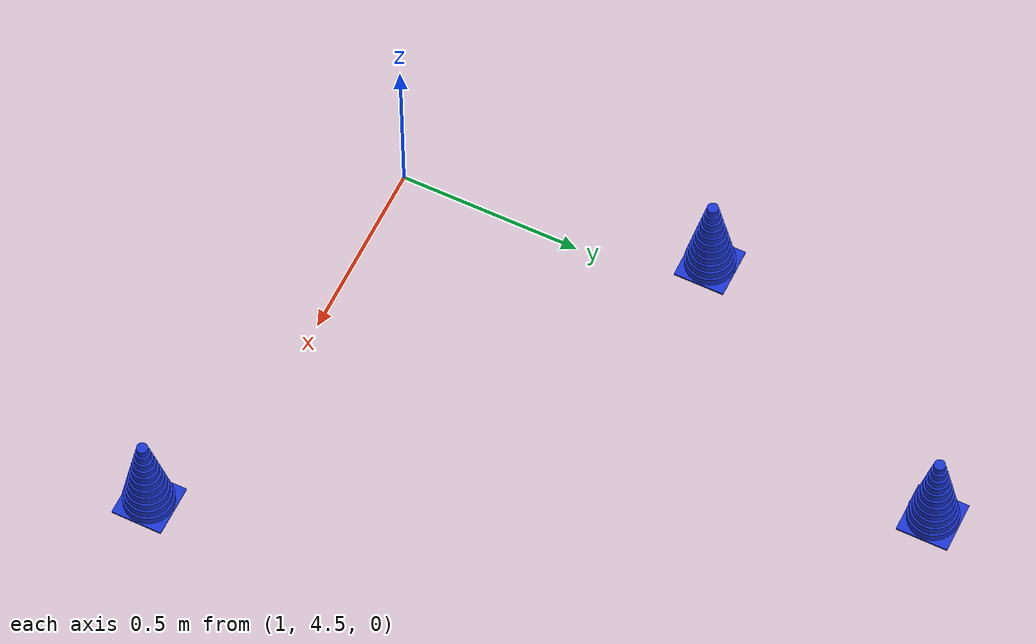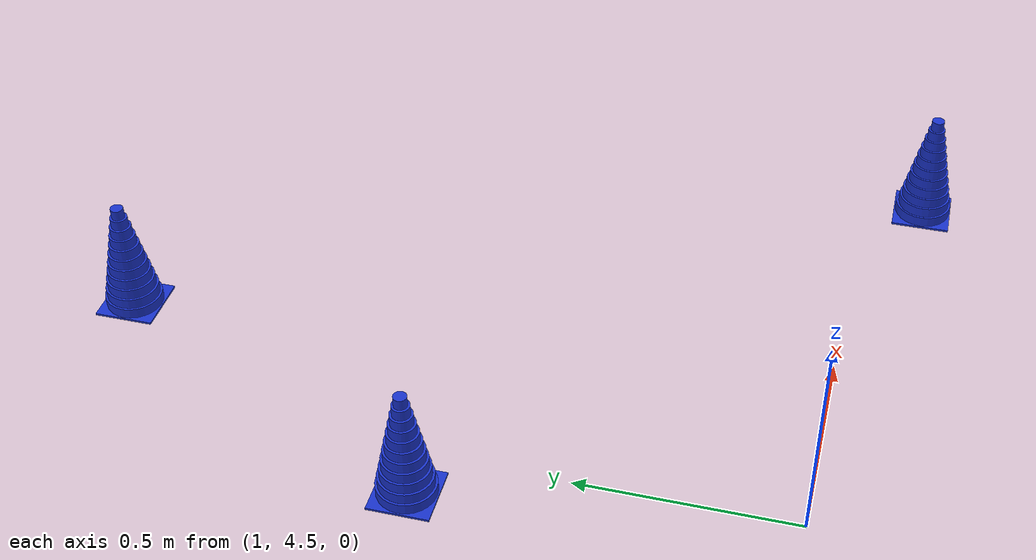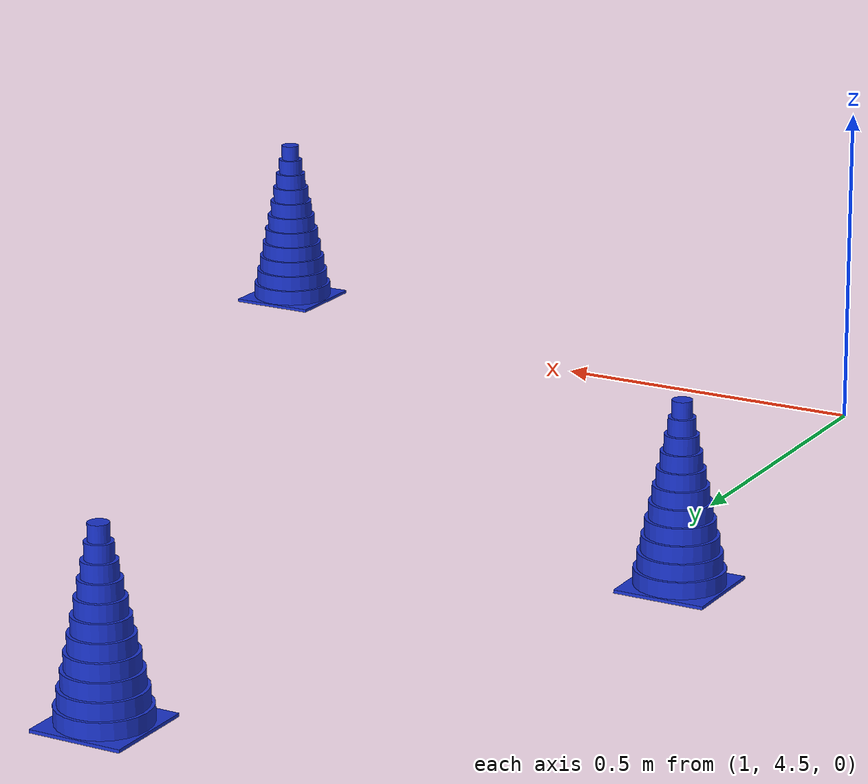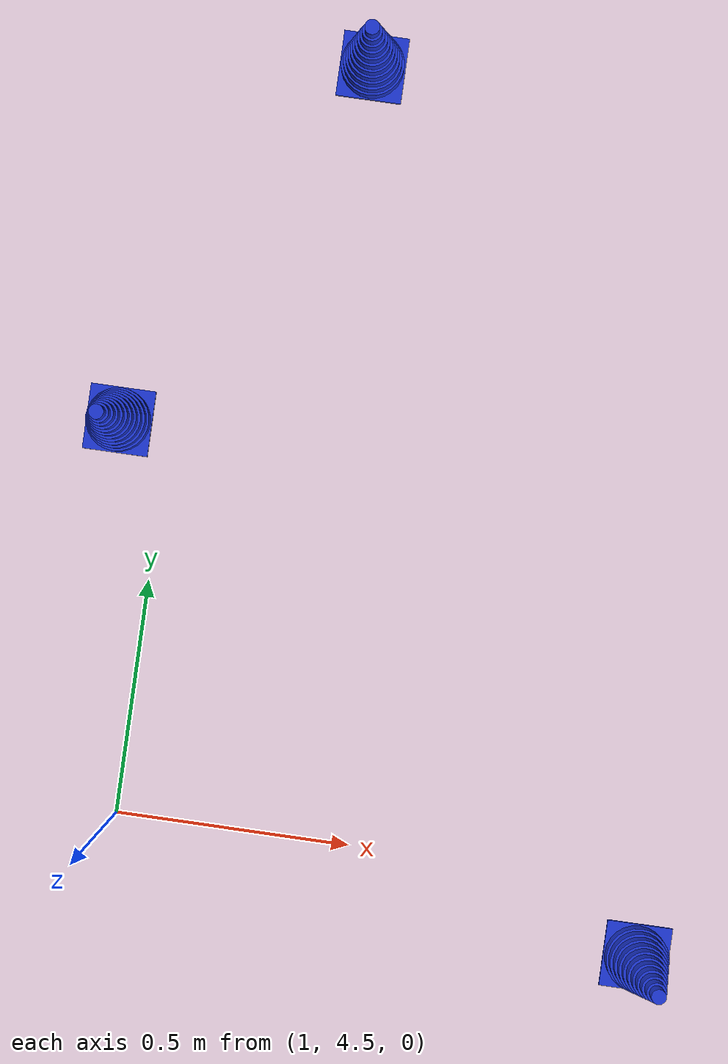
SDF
<sdf version="1.5">
 <world name="tars_qualy_real">
  <include><uri>model://sun</uri></include>
  <model name="senuelo_cono_4">
   <static>1</static>
   <pose>2.140 4.350 0 0 0 0</pose>
   <link name="senuelo_cono_4">
    <collision name="c0">
     <pose>0 0 0.0025 0 0 0</pose>
     <geometry><box><size>0.14 0.14 0.005</size></box></geometry>
    </collision>
    <visual name="v0">
     <pose>0 0 0.0025 0 0 0</pose>
     <geometry><box><size>0.14 0.14 0.005</size></box></geometry>
     <material>
      <ambient>0.10 0.20 0.80 1</ambient>
      <diffuse>0.10 0.20 0.80 1</diffuse>
      <specular>0.1 0.1 0.1 1</specular>
     </material>
    </visual>
    <collision name="c1">
     <pose>0 0 0.0175 0 0 0</pose>
     <geometry><cylinder><radius>0.0674</radius><length>0.0250</length></cylinder></geometry>
    </collision>
    <visual name="v1">
     <pose>0 0 0.0175 0 0 0</pose>
     <geometry><cylinder><radius>0.0674</radius><length>0.0250</length></cylinder></geometry>
     <material>
      <ambient>0.10 0.20 0.80 1</ambient>
      <diffuse>0.10 0.20 0.80 1</diffuse>
      <specular>0.1 0.1 0.1 1</specular>
     </material>
    </visual>
    <collision name="c2">
     <pose>0 0 0.0425 0 0 0</pose>
     <geometry><cylinder><radius>0.0622</radius><length>0.0250</length></cylinder></geometry>
    </collision>
    <visual name="v2">
     <pose>0 0 0.0425 0 0 0</pose>
     <geometry><cylinder><radius>0.0622</radius><length>0.0250</length></cylinder></geometry>
     <material>
      <ambient>0.10 0.20 0.80 1</ambient>
      <diffuse>0.10 0.20 0.80 1</diffuse>
      <specular>0.1 0.1 0.1 1</specular>
     </material>
    </visual>
    <collision name="c3">
     <pose>0 0 0.0675 0 0 0</pose>
     <geometry><cylinder><radius>0.0569</radius><length>0.0250</length></cylinder></geometry>
    </collision>
    <visual name="v3">
     <pose>0 0 0.0675 0 0 0</pose>
     <geometry><cylinder><radius>0.0569</radius><length>0.0250</length></cylinder></geometry>
     <material>
      <ambient>0.10 0.20 0.80 1</ambient>
      <diffuse>0.10 0.20 0.80 1</diffuse>
      <specular>0.1 0.1 0.1 1</specular>
     </material>
    </visual>
    <collision name="c4">
     <pose>0 0 0.0925 0 0 0</pose>
     <geometry><cylinder><radius>0.0517</radius><length>0.0250</length></cylinder></geometry>
    </collision>
    <visual name="v4">
     <pose>0 0 0.0925 0 0 0</pose>
     <geometry><cylinder><radius>0.0517</radius><length>0.0250</length></cylinder></geometry>
     <material>
      <ambient>0.10 0.20 0.80 1</ambient>
      <diffuse>0.10 0.20 0.80 1</diffuse>
      <specular>0.1 0.1 0.1 1</specular>
     </material>
    </visual>
    <collision name="c5">
     <pose>0 0 0.1175 0 0 0</pose>
     <geometry><cylinder><radius>0.0465</radius><length>0.0250</length></cylinder></geometry>
    </collision>
    <visual name="v5">
     <pose>0 0 0.1175 0 0 0</pose>
     <geometry><cylinder><radius>0.0465</radius><length>0.0250</length></cylinder></geometry>
     <material>
      <ambient>0.10 0.20 0.80 1</ambient>
      <diffuse>0.10 0.20 0.80 1</diffuse>
      <specular>0.1 0.1 0.1 1</specular>
     </material>
    </visual>
    <collision name="c6">
     <pose>0 0 0.1425 0 0 0</pose>
     <geometry><cylinder><radius>0.0413</radius><length>0.0250</length></cylinder></geometry>
    </collision>
    <visual name="v6">
     <pose>0 0 0.1425 0 0 0</pose>
     <geometry><cylinder><radius>0.0413</radius><length>0.0250</length></cylinder></geometry>
     <material>
      <ambient>0.10 0.20 0.80 1</ambient>
      <diffuse>0.10 0.20 0.80 1</diffuse>
      <specular>0.1 0.1 0.1 1</specular>
     </material>
    </visual>
    <collision name="c7">
     <pose>0 0 0.1675 0 0 0</pose>
     <geometry><cylinder><radius>0.0360</radius><length>0.0250</length></cylinder></geometry>
    </collision>
    <visual name="v7">
     <pose>0 0 0.1675 0 0 0</pose>
     <geometry><cylinder><radius>0.0360</radius><length>0.0250</length></cylinder></geometry>
     <material>
      <ambient>0.10 0.20 0.80 1</ambient>
      <diffuse>0.10 0.20 0.80 1</diffuse>
      <specular>0.1 0.1 0.1 1</specular>
     </material>
    </visual>
    <collision name="c8">
     <pose>0 0 0.1925 0 0 0</pose>
     <geometry><cylinder><radius>0.0308</radius><length>0.0250</length></cylinder></geometry>
    </collision>
    <visual name="v8">
     <pose>0 0 0.1925 0 0 0</pose>
     <geometry><cylinder><radius>0.0308</radius><length>0.0250</length></cylinder></geometry>
     <material>
      <ambient>0.10 0.20 0.80 1</ambient>
      <diffuse>0.10 0.20 0.80 1</diffuse>
      <specular>0.1 0.1 0.1 1</specular>
     </material>
    </visual>
    <collision name="c9">
     <pose>0 0 0.2175 0 0 0</pose>
     <geometry><cylinder><radius>0.0256</radius><length>0.0250</length></cylinder></geometry>
    </collision>
    <visual name="v9">
     <pose>0 0 0.2175 0 0 0</pose>
     <geometry><cylinder><radius>0.0256</radius><length>0.0250</length></cylinder></geometry>
     <material>
      <ambient>0.10 0.20 0.80 1</ambient>
      <diffuse>0.10 0.20 0.80 1</diffuse>
      <specular>0.1 0.1 0.1 1</specular>
     </material>
    </visual>
    <collision name="c10">
     <pose>0 0 0.2425 0 0 0</pose>
     <geometry><cylinder><radius>0.0203</radius><length>0.0250</length></cylinder></geometry>
    </collision>
    <visual name="v10">
     <pose>0 0 0.2425 0 0 0</pose>
     <geometry><cylinder><radius>0.0203</radius><length>0.0250</length></cylinder></geometry>
     <material>
      <ambient>0.10 0.20 0.80 1</ambient>
      <diffuse>0.10 0.20 0.80 1</diffuse>
      <specular>0.1 0.1 0.1 1</specular>
     </material>
    </visual>
    <collision name="c11">
     <pose>0 0 0.2675 0 0 0</pose>
     <geometry><cylinder><radius>0.0151</radius><length>0.0250</length></cylinder></geometry>
    </collision>
    <visual name="v11">
     <pose>0 0 0.2675 0 0 0</pose>
     <geometry><cylinder><radius>0.0151</radius><length>0.0250</length></cylinder></geometry>
     <material>
      <ambient>0.10 0.20 0.80 1</ambient>
      <diffuse>0.10 0.20 0.80 1</diffuse>
      <specular>0.1 0.1 0.1 1</specular>
     </material>
    </visual>
   </link>
  </model>
  <model name="senuelo_cono_5">
   <static>1</static>
   <pose>0.890 5.330 0 0 0 0</pose>
   <link name="senuelo_cono_5">
    <collision name="c0">
     <pose>0 0 0.0025 0 0 0</pose>
     <geometry><box><size>0.14 0.14 0.005</size></box></geometry>
    </collision>
    <visual name="v0">
     <pose>0 0 0.0025 0 0 0</pose>
     <geometry><box><size>0.14 0.14 0.005</size></box></geometry>
     <material>
      <ambient>0.10 0.20 0.80 1</ambient>
      <diffuse>0.10 0.20 0.80 1</diffuse>
      <specular>0.1 0.1 0.1 1</specular>
     </material>
    </visual>
    <collision name="c1">
     <pose>0 0 0.0175 0 0 0</pose>
     <geometry><cylinder><radius>0.0674</radius><length>0.0250</length></cylinder></geometry>
    </collision>
    <visual name="v1">
     <pose>0 0 0.0175 0 0 0</pose>
     <geometry><cylinder><radius>0.0674</radius><length>0.0250</length></cylinder></geometry>
     <material>
      <ambient>0.10 0.20 0.80 1</ambient>
      <diffuse>0.10 0.20 0.80 1</diffuse>
      <specular>0.1 0.1 0.1 1</specular>
     </material>
    </visual>
    <collision name="c2">
     <pose>0 0 0.0425 0 0 0</pose>
     <geometry><cylinder><radius>0.0622</radius><length>0.0250</length></cylinder></geometry>
    </collision>
    <visual name="v2">
     <pose>0 0 0.0425 0 0 0</pose>
     <geometry><cylinder><radius>0.0622</radius><length>0.0250</length></cylinder></geometry>
     <material>
      <ambient>0.10 0.20 0.80 1</ambient>
      <diffuse>0.10 0.20 0.80 1</diffuse>
      <specular>0.1 0.1 0.1 1</specular>
     </material>
    </visual>
    <collision name="c3">
     <pose>0 0 0.0675 0 0 0</pose>
     <geometry><cylinder><radius>0.0569</radius><length>0.0250</length></cylinder></geometry>
    </collision>
    <visual name="v3">
     <pose>0 0 0.0675 0 0 0</pose>
     <geometry><cylinder><radius>0.0569</radius><length>0.0250</length></cylinder></geometry>
     <material>
      <ambient>0.10 0.20 0.80 1</ambient>
      <diffuse>0.10 0.20 0.80 1</diffuse>
      <specular>0.1 0.1 0.1 1</specular>
     </material>
    </visual>
    <collision name="c4">
     <pose>0 0 0.0925 0 0 0</pose>
     <geometry><cylinder><radius>0.0517</radius><length>0.0250</length></cylinder></geometry>
    </collision>
    <visual name="v4">
     <pose>0 0 0.0925 0 0 0</pose>
     <geometry><cylinder><radius>0.0517</radius><length>0.0250</length></cylinder></geometry>
     <material>
      <ambient>0.10 0.20 0.80 1</ambient>
      <diffuse>0.10 0.20 0.80 1</diffuse>
      <specular>0.1 0.1 0.1 1</specular>
     </material>
    </visual>
    <collision name="c5">
     <pose>0 0 0.1175 0 0 0</pose>
     <geometry><cylinder><radius>0.0465</radius><length>0.0250</length></cylinder></geometry>
    </collision>
    <visual name="v5">
     <pose>0 0 0.1175 0 0 0</pose>
     <geometry><cylinder><radius>0.0465</radius><length>0.0250</length></cylinder></geometry>
     <material>
      <ambient>0.10 0.20 0.80 1</ambient>
      <diffuse>0.10 0.20 0.80 1</diffuse>
      <specular>0.1 0.1 0.1 1</specular>
     </material>
    </visual>
    <collision name="c6">
     <pose>0 0 0.1425 0 0 0</pose>
     <geometry><cylinder><radius>0.0413</radius><length>0.0250</length></cylinder></geometry>
    </collision>
    <visual name="v6">
     <pose>0 0 0.1425 0 0 0</pose>
     <geometry><cylinder><radius>0.0413</radius><length>0.0250</length></cylinder></geometry>
     <material>
      <ambient>0.10 0.20 0.80 1</ambient>
      <diffuse>0.10 0.20 0.80 1</diffuse>
      <specular>0.1 0.1 0.1 1</specular>
     </material>
    </visual>
    <collision name="c7">
     <pose>0 0 0.1675 0 0 0</pose>
     <geometry><cylinder><radius>0.0360</radius><length>0.0250</length></cylinder></geometry>
    </collision>
    <visual name="v7">
     <pose>0 0 0.1675 0 0 0</pose>
     <geometry><cylinder><radius>0.0360</radius><length>0.0250</length></cylinder></geometry>
     <material>
      <ambient>0.10 0.20 0.80 1</ambient>
      <diffuse>0.10 0.20 0.80 1</diffuse>
      <specular>0.1 0.1 0.1 1</specular>
     </material>
    </visual>
    <collision name="c8">
     <pose>0 0 0.1925 0 0 0</pose>
     <geometry><cylinder><radius>0.0308</radius><length>0.0250</length></cylinder></geometry>
    </collision>
    <visual name="v8">
     <pose>0 0 0.1925 0 0 0</pose>
     <geometry><cylinder><radius>0.0308</radius><length>0.0250</length></cylinder></geometry>
     <material>
      <ambient>0.10 0.20 0.80 1</ambient>
      <diffuse>0.10 0.20 0.80 1</diffuse>
      <specular>0.1 0.1 0.1 1</specular>
     </material>
    </visual>
    <collision name="c9">
     <pose>0 0 0.2175 0 0 0</pose>
     <geometry><cylinder><radius>0.0256</radius><length>0.0250</length></cylinder></geometry>
    </collision>
    <visual name="v9">
     <pose>0 0 0.2175 0 0 0</pose>
     <geometry><cylinder><radius>0.0256</radius><length>0.0250</length></cylinder></geometry>
     <material>
      <ambient>0.10 0.20 0.80 1</ambient>
      <diffuse>0.10 0.20 0.80 1</diffuse>
      <specular>0.1 0.1 0.1 1</specular>
     </material>
    </visual>
    <collision name="c10">
     <pose>0 0 0.2425 0 0 0</pose>
     <geometry><cylinder><radius>0.0203</radius><length>0.0250</length></cylinder></geometry>
    </collision>
    <visual name="v10">
     <pose>0 0 0.2425 0 0 0</pose>
     <geometry><cylinder><radius>0.0203</radius><length>0.0250</length></cylinder></geometry>
     <material>
      <ambient>0.10 0.20 0.80 1</ambient>
      <diffuse>0.10 0.20 0.80 1</diffuse>
      <specular>0.1 0.1 0.1 1</specular>
     </material>
    </visual>
    <collision name="c11">
     <pose>0 0 0.2675 0 0 0</pose>
     <geometry><cylinder><radius>0.0151</radius><length>0.0250</length></cylinder></geometry>
    </collision>
    <visual name="v11">
     <pose>0 0 0.2675 0 0 0</pose>
     <geometry><cylinder><radius>0.0151</radius><length>0.0250</length></cylinder></geometry>
     <material>
      <ambient>0.10 0.20 0.80 1</ambient>
      <diffuse>0.10 0.20 0.80 1</diffuse>
      <specular>0.1 0.1 0.1 1</specular>
     </material>
    </visual>
   </link>
  </model>
  <model name="senuelo_cono_6">
   <static>1</static>
   <pose>1.320 6.150 0 0 0 0</pose>
   <link name="senuelo_cono_6">
    <collision name="c0">
     <pose>0 0 0.0025 0 0 0</pose>
     <geometry><box><size>0.14 0.14 0.005</size></box></geometry>
    </collision>
    <visual name="v0">
     <pose>0 0 0.0025 0 0 0</pose>
     <geometry><box><size>0.14 0.14 0.005</size></box></geometry>
     <material>
      <ambient>0.10 0.20 0.80 1</ambient>
      <diffuse>0.10 0.20 0.80 1</diffuse>
      <specular>0.1 0.1 0.1 1</specular>
     </material>
    </visual>
    <collision name="c1">
     <pose>0 0 0.0175 0 0 0</pose>
     <geometry><cylinder><radius>0.0674</radius><length>0.0250</length></cylinder></geometry>
    </collision>
    <visual name="v1">
     <pose>0 0 0.0175 0 0 0</pose>
     <geometry><cylinder><radius>0.0674</radius><length>0.0250</length></cylinder></geometry>
     <material>
      <ambient>0.10 0.20 0.80 1</ambient>
      <diffuse>0.10 0.20 0.80 1</diffuse>
      <specular>0.1 0.1 0.1 1</specular>
     </material>
    </visual>
    <collision name="c2">
     <pose>0 0 0.0425 0 0 0</pose>
     <geometry><cylinder><radius>0.0622</radius><length>0.0250</length></cylinder></geometry>
    </collision>
    <visual name="v2">
     <pose>0 0 0.0425 0 0 0</pose>
     <geometry><cylinder><radius>0.0622</radius><length>0.0250</length></cylinder></geometry>
     <material>
      <ambient>0.10 0.20 0.80 1</ambient>
      <diffuse>0.10 0.20 0.80 1</diffuse>
      <specular>0.1 0.1 0.1 1</specular>
     </material>
    </visual>
    <collision name="c3">
     <pose>0 0 0.0675 0 0 0</pose>
     <geometry><cylinder><radius>0.0569</radius><length>0.0250</length></cylinder></geometry>
    </collision>
    <visual name="v3">
     <pose>0 0 0.0675 0 0 0</pose>
     <geometry><cylinder><radius>0.0569</radius><length>0.0250</length></cylinder></geometry>
     <material>
      <ambient>0.10 0.20 0.80 1</ambient>
      <diffuse>0.10 0.20 0.80 1</diffuse>
      <specular>0.1 0.1 0.1 1</specular>
     </material>
    </visual>
    <collision name="c4">
     <pose>0 0 0.0925 0 0 0</pose>
     <geometry><cylinder><radius>0.0517</radius><length>0.0250</length></cylinder></geometry>
    </collision>
    <visual name="v4">
     <pose>0 0 0.0925 0 0 0</pose>
     <geometry><cylinder><radius>0.0517</radius><length>0.0250</length></cylinder></geometry>
     <material>
      <ambient>0.10 0.20 0.80 1</ambient>
      <diffuse>0.10 0.20 0.80 1</diffuse>
      <specular>0.1 0.1 0.1 1</specular>
     </material>
    </visual>
    <collision name="c5">
     <pose>0 0 0.1175 0 0 0</pose>
     <geometry><cylinder><radius>0.0465</radius><length>0.0250</length></cylinder></geometry>
    </collision>
    <visual name="v5">
     <pose>0 0 0.1175 0 0 0</pose>
     <geometry><cylinder><radius>0.0465</radius><length>0.0250</length></cylinder></geometry>
     <material>
      <ambient>0.10 0.20 0.80 1</ambient>
      <diffuse>0.10 0.20 0.80 1</diffuse>
      <specular>0.1 0.1 0.1 1</specular>
     </material>
    </visual>
    <collision name="c6">
     <pose>0 0 0.1425 0 0 0</pose>
     <geometry><cylinder><radius>0.0413</radius><length>0.0250</length></cylinder></geometry>
    </collision>
    <visual name="v6">
     <pose>0 0 0.1425 0 0 0</pose>
     <geometry><cylinder><radius>0.0413</radius><length>0.0250</length></cylinder></geometry>
     <material>
      <ambient>0.10 0.20 0.80 1</ambient>
      <diffuse>0.10 0.20 0.80 1</diffuse>
      <specular>0.1 0.1 0.1 1</specular>
     </material>
    </visual>
    <collision name="c7">
     <pose>0 0 0.1675 0 0 0</pose>
     <geometry><cylinder><radius>0.0360</radius><length>0.0250</length></cylinder></geometry>
    </collision>
    <visual name="v7">
     <pose>0 0 0.1675 0 0 0</pose>
     <geometry><cylinder><radius>0.0360</radius><length>0.0250</length></cylinder></geometry>
     <material>
      <ambient>0.10 0.20 0.80 1</ambient>
      <diffuse>0.10 0.20 0.80 1</diffuse>
      <specular>0.1 0.1 0.1 1</specular>
     </material>
    </visual>
    <collision name="c8">
     <pose>0 0 0.1925 0 0 0</pose>
     <geometry><cylinder><radius>0.0308</radius><length>0.0250</length></cylinder></geometry>
    </collision>
    <visual name="v8">
     <pose>0 0 0.1925 0 0 0</pose>
     <geometry><cylinder><radius>0.0308</radius><length>0.0250</length></cylinder></geometry>
     <material>
      <ambient>0.10 0.20 0.80 1</ambient>
      <diffuse>0.10 0.20 0.80 1</diffuse>
      <specular>0.1 0.1 0.1 1</specular>
     </material>
    </visual>
    <collision name="c9">
     <pose>0 0 0.2175 0 0 0</pose>
     <geometry><cylinder><radius>0.0256</radius><length>0.0250</length></cylinder></geometry>
    </collision>
    <visual name="v9">
     <pose>0 0 0.2175 0 0 0</pose>
     <geometry><cylinder><radius>0.0256</radius><length>0.0250</length></cylinder></geometry>
     <material>
      <ambient>0.10 0.20 0.80 1</ambient>
      <diffuse>0.10 0.20 0.80 1</diffuse>
      <specular>0.1 0.1 0.1 1</specular>
     </material>
    </visual>
    <collision name="c10">
     <pose>0 0 0.2425 0 0 0</pose>
     <geometry><cylinder><radius>0.0203</radius><length>0.0250</length></cylinder></geometry>
    </collision>
    <visual name="v10">
     <pose>0 0 0.2425 0 0 0</pose>
     <geometry><cylinder><radius>0.0203</radius><length>0.0250</length></cylinder></geometry>
     <material>
      <ambient>0.10 0.20 0.80 1</ambient>
      <diffuse>0.10 0.20 0.80 1</diffuse>
      <specular>0.1 0.1 0.1 1</specular>
     </material>
    </visual>
    <collision name="c11">
     <pose>0 0 0.2675 0 0 0</pose>
     <geometry><cylinder><radius>0.0151</radius><length>0.0250</length></cylinder></geometry>
    </collision>
    <visual name="v11">
     <pose>0 0 0.2675 0 0 0</pose>
     <geometry><cylinder><radius>0.0151</radius><length>0.0250</length></cylinder></geometry>
     <material>
      <ambient>0.10 0.20 0.80 1</ambient>
      <diffuse>0.10 0.20 0.80 1</diffuse>
      <specular>0.1 0.1 0.1 1</specular>
     </material>
    </visual>
   </link>
  </model>
 </world>
</sdf>
